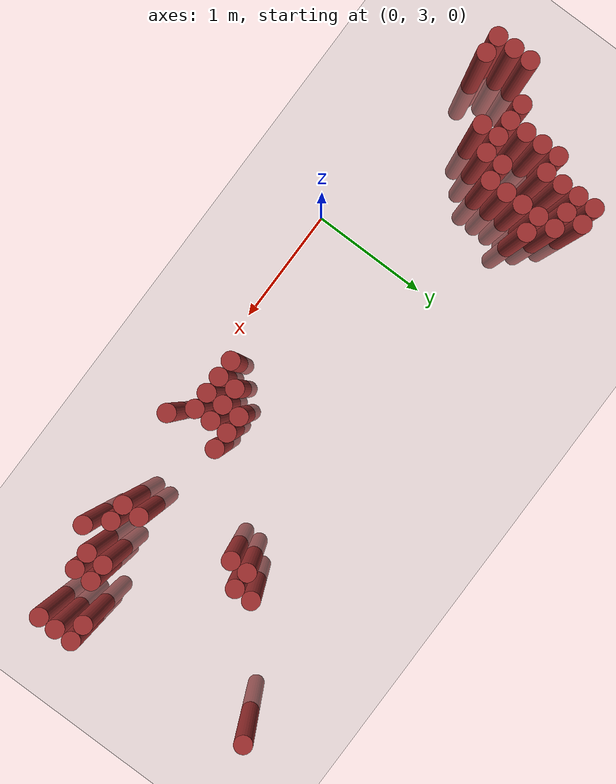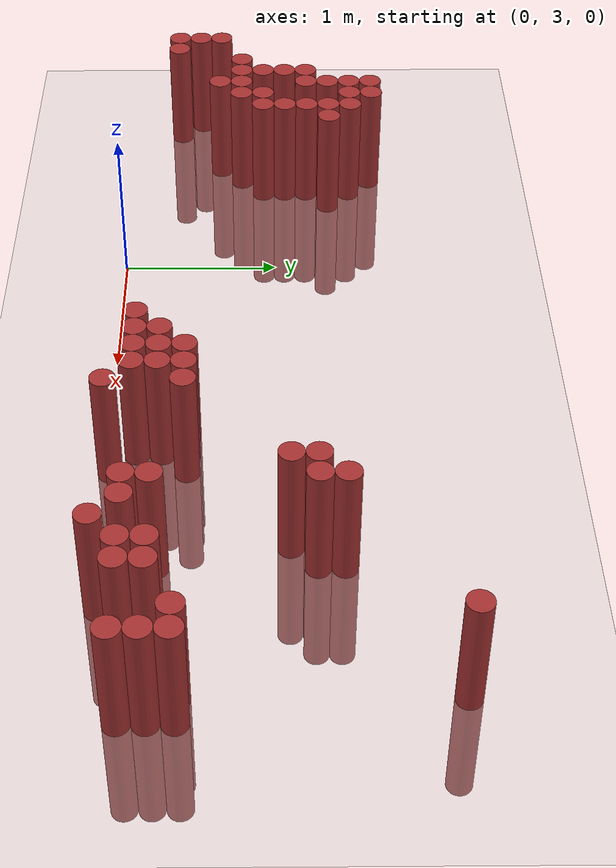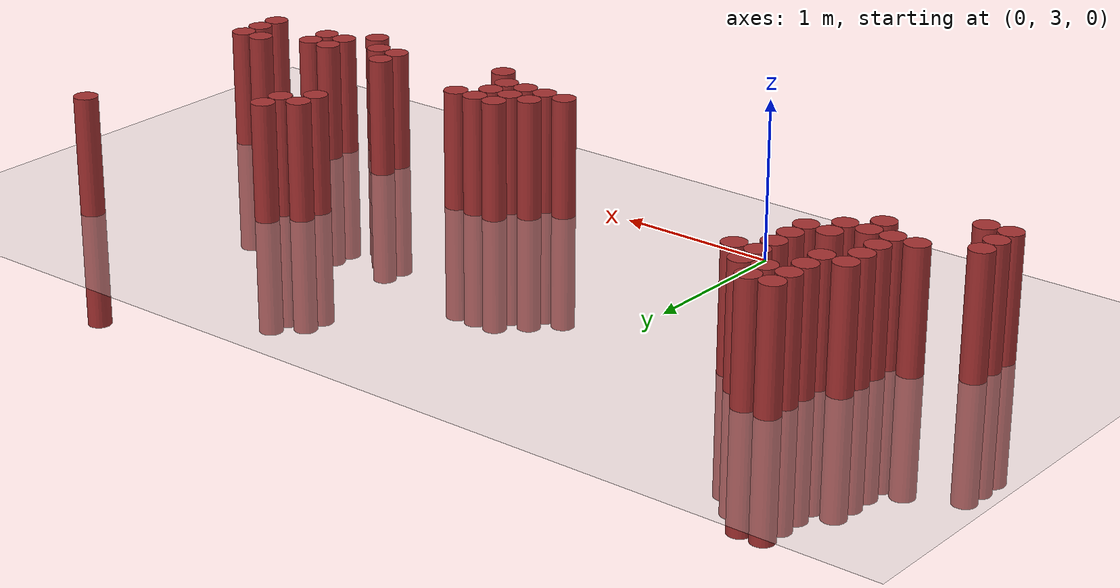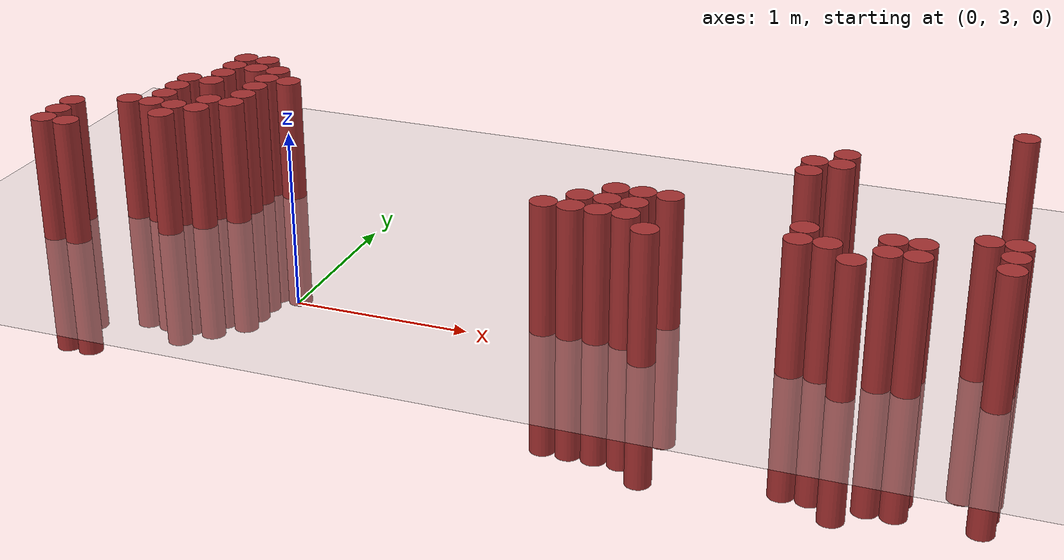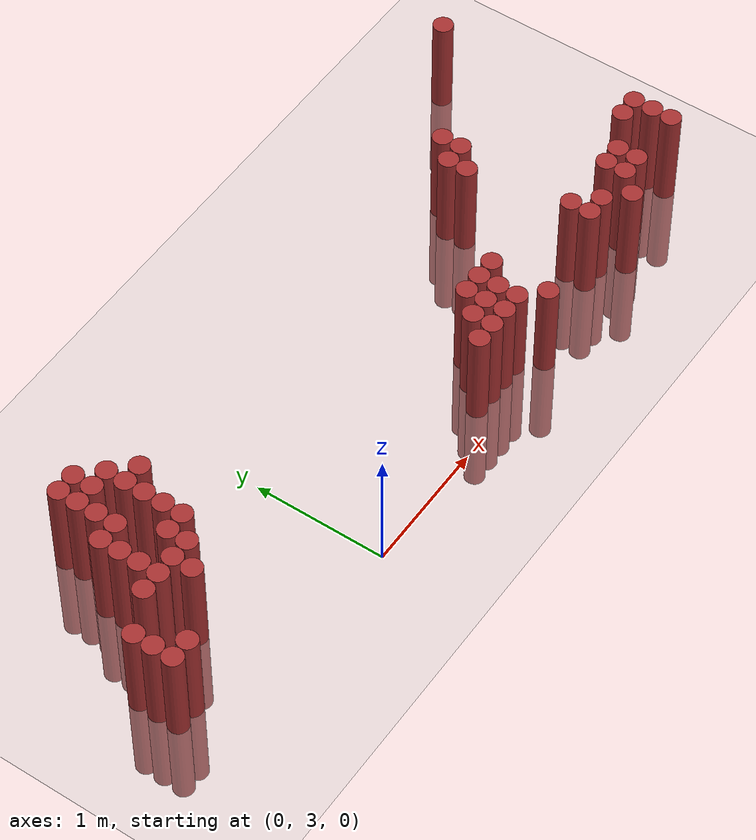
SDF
<sdf version="1.6">
 <world name="default">
  <model name="ground_plane">
   <static>1</static>
   <link name="link">
    <collision name="collision">
     <geometry><plane><normal>0 0 1</normal><size>100 100</size></plane></geometry>
     <surface><friction><ode><mu>100</mu><mu2>50</mu2></ode></friction></surface>
    </collision>
    <visual name="visual">
     <cast_shadows>0</cast_shadows>
     <geometry><plane><normal>0 0 1</normal><size>100 100</size></plane></geometry>
     <material>
      <script><uri>file://media/materials/scripts/gazebo.material</uri><name>Gazebo/Grey</name></script>
     </material>
    </visual>
   </link>
  </model>
  <model name="unit_cylinder_304">
   <static>1</static>
   <pose>-1.775000 3.325000 0.000000 0.000000 0.000000 0.000000</pose>
   <link name="link">
    <inertial>
     <mass>1</mass>
     <inertia><ixx>0.145833</ixx><ixy>0</ixy><ixz>0</ixz><iyy>0.145833</iyy><iyz>0</iyz><izz>0.125</izz></inertia>
    </inertial>
    <collision name="collision">
     <geometry><cylinder><radius>0.075000</radius><length>1.5</length></cylinder></geometry>
    </collision>
    <visual name="visual">
     <geometry><cylinder><radius>0.075000</radius><length>1.5</length></cylinder></geometry>
     <material>
      <ambient>0.648000 0.192000 0.192000 1</ambient>
      <diffuse>0.648000 0.192000 0.192000 1</diffuse>
     </material>
     <material>
      <script><name>Gazebo/Grey</name><uri>file://media/materials/scripts/gazebo.material</uri></script>
     </material>
    </visual>
   </link>
  </model>
  <model name="unit_cylinder_305">
   <static>1</static>
   <pose>-1.775000 3.475000 0.000000 0.000000 0.000000 0.000000</pose>
   <link name="link">
    <inertial>
     <mass>1</mass>
     <inertia><ixx>0.145833</ixx><ixy>0</ixy><ixz>0</ixz><iyy>0.145833</iyy><iyz>0</iyz><izz>0.125</izz></inertia>
    </inertial>
    <collision name="collision">
     <geometry><cylinder><radius>0.075000</radius><length>1.5</length></cylinder></geometry>
    </collision>
    <visual name="visual">
     <geometry><cylinder><radius>0.075000</radius><length>1.5</length></cylinder></geometry>
     <material>
      <ambient>0.648000 0.192000 0.192000 1</ambient>
      <diffuse>0.648000 0.192000 0.192000 1</diffuse>
     </material>
     <material>
      <script><name>Gazebo/Grey</name><uri>file://media/materials/scripts/gazebo.material</uri></script>
     </material>
    </visual>
   </link>
  </model>
  <model name="unit_cylinder_306">
   <static>1</static>
   <pose>-1.775000 3.625000 0.000000 0.000000 0.000000 0.000000</pose>
   <link name="link">
    <inertial>
     <mass>1</mass>
     <inertia><ixx>0.145833</ixx><ixy>0</ixy><ixz>0</ixz><iyy>0.145833</iyy><iyz>0</iyz><izz>0.125</izz></inertia>
    </inertial>
    <collision name="collision">
     <geometry><cylinder><radius>0.075000</radius><length>1.5</length></cylinder></geometry>
    </collision>
    <visual name="visual">
     <geometry><cylinder><radius>0.075000</radius><length>1.5</length></cylinder></geometry>
     <material>
      <ambient>0.648000 0.192000 0.192000 1</ambient>
      <diffuse>0.648000 0.192000 0.192000 1</diffuse>
     </material>
     <material>
      <script><name>Gazebo/Grey</name><uri>file://media/materials/scripts/gazebo.material</uri></script>
     </material>
    </visual>
   </link>
  </model>
  <model name="unit_cylinder_310">
   <static>1</static>
   <pose>-1.625000 3.325000 0.000000 0.000000 0.000000 0.000000</pose>
   <link name="link">
    <inertial>
     <mass>1</mass>
     <inertia><ixx>0.145833</ixx><ixy>0</ixy><ixz>0</ixz><iyy>0.145833</iyy><iyz>0</iyz><izz>0.125</izz></inertia>
    </inertial>
    <collision name="collision">
     <geometry><cylinder><radius>0.075000</radius><length>1.5</length></cylinder></geometry>
    </collision>
    <visual name="visual">
     <geometry><cylinder><radius>0.075000</radius><length>1.5</length></cylinder></geometry>
     <material>
      <ambient>0.648000 0.192000 0.192000 1</ambient>
      <diffuse>0.648000 0.192000 0.192000 1</diffuse>
     </material>
     <material>
      <script><name>Gazebo/Grey</name><uri>file://media/materials/scripts/gazebo.material</uri></script>
     </material>
    </visual>
   </link>
  </model>
  <model name="unit_cylinder_316">
   <static>1</static>
   <pose>-1.475000 3.775000 0.000000 0.000000 0.000000 0.000000</pose>
   <link name="link">
    <inertial>
     <mass>1</mass>
     <inertia><ixx>0.145833</ixx><ixy>0</ixy><ixz>0</ixz><iyy>0.145833</iyy><iyz>0</iyz><izz>0.125</izz></inertia>
    </inertial>
    <collision name="collision">
     <geometry><cylinder><radius>0.075000</radius><length>1.5</length></cylinder></geometry>
    </collision>
    <visual name="visual">
     <geometry><cylinder><radius>0.075000</radius><length>1.5</length></cylinder></geometry>
     <material>
      <ambient>0.648000 0.192000 0.192000 1</ambient>
      <diffuse>0.648000 0.192000 0.192000 1</diffuse>
     </material>
     <material>
      <script><name>Gazebo/Grey</name><uri>file://media/materials/scripts/gazebo.material</uri></script>
     </material>
    </visual>
   </link>
  </model>
  <model name="unit_cylinder_321">
   <static>1</static>
   <pose>-1.325000 3.775000 0.000000 0.000000 0.000000 0.000000</pose>
   <link name="link">
    <inertial>
     <mass>1</mass>
     <inertia><ixx>0.145833</ixx><ixy>0</ixy><ixz>0</ixz><iyy>0.145833</iyy><iyz>0</iyz><izz>0.125</izz></inertia>
    </inertial>
    <collision name="collision">
     <geometry><cylinder><radius>0.075000</radius><length>1.5</length></cylinder></geometry>
    </collision>
    <visual name="visual">
     <geometry><cylinder><radius>0.075000</radius><length>1.5</length></cylinder></geometry>
     <material>
      <ambient>0.648000 0.192000 0.192000 1</ambient>
      <diffuse>0.648000 0.192000 0.192000 1</diffuse>
     </material>
     <material>
      <script><name>Gazebo/Grey</name><uri>file://media/materials/scripts/gazebo.material</uri></script>
     </material>
    </visual>
   </link>
  </model>
  <model name="unit_cylinder_322">
   <static>1</static>
   <pose>-1.325000 3.925000 0.000000 0.000000 0.000000 0.000000</pose>
   <link name="link">
    <inertial>
     <mass>1</mass>
     <inertia><ixx>0.145833</ixx><ixy>0</ixy><ixz>0</ixz><iyy>0.145833</iyy><iyz>0</iyz><izz>0.125</izz></inertia>
    </inertial>
    <collision name="collision">
     <geometry><cylinder><radius>0.075000</radius><length>1.5</length></cylinder></geometry>
    </collision>
    <visual name="visual">
     <geometry><cylinder><radius>0.075000</radius><length>1.5</length></cylinder></geometry>
     <material>
      <ambient>0.648000 0.192000 0.192000 1</ambient>
      <diffuse>0.648000 0.192000 0.192000 1</diffuse>
     </material>
     <material>
      <script><name>Gazebo/Grey</name><uri>file://media/materials/scripts/gazebo.material</uri></script>
     </material>
    </visual>
   </link>
  </model>
  <model name="unit_cylinder_323">
   <static>1</static>
   <pose>-1.325000 4.075000 0.000000 0.000000 0.000000 0.000000</pose>
   <link name="link">
    <inertial>
     <mass>1</mass>
     <inertia><ixx>0.145833</ixx><ixy>0</ixy><ixz>0</ixz><iyy>0.145833</iyy><iyz>0</iyz><izz>0.125</izz></inertia>
    </inertial>
    <collision name="collision">
     <geometry><cylinder><radius>0.075000</radius><length>1.5</length></cylinder></geometry>
    </collision>
    <visual name="visual">
     <geometry><cylinder><radius>0.075000</radius><length>1.5</length></cylinder></geometry>
     <material>
      <ambient>0.648000 0.192000 0.192000 1</ambient>
      <diffuse>0.648000 0.192000 0.192000 1</diffuse>
     </material>
     <material>
      <script><name>Gazebo/Grey</name><uri>file://media/materials/scripts/gazebo.material</uri></script>
     </material>
    </visual>
   </link>
  </model>
  <model name="unit_cylinder_324">
   <static>1</static>
   <pose>-1.325000 4.225000 0.000000 0.000000 0.000000 0.000000</pose>
   <link name="link">
    <inertial>
     <mass>1</mass>
     <inertia><ixx>0.145833</ixx><ixy>0</ixy><ixz>0</ixz><iyy>0.145833</iyy><iyz>0</iyz><izz>0.125</izz></inertia>
    </inertial>
    <collision name="collision">
     <geometry><cylinder><radius>0.075000</radius><length>1.5</length></cylinder></geometry>
    </collision>
    <visual name="visual">
     <geometry><cylinder><radius>0.075000</radius><length>1.5</length></cylinder></geometry>
     <material>
      <ambient>0.648000 0.192000 0.192000 1</ambient>
      <diffuse>0.648000 0.192000 0.192000 1</diffuse>
     </material>
     <material>
      <script><name>Gazebo/Grey</name><uri>file://media/materials/scripts/gazebo.material</uri></script>
     </material>
    </visual>
   </link>
  </model>
  <model name="unit_cylinder_325">
   <static>1</static>
   <pose>-1.175000 3.625000 0.000000 0.000000 0.000000 0.000000</pose>
   <link name="link">
    <inertial>
     <mass>1</mass>
     <inertia><ixx>0.145833</ixx><ixy>0</ixy><ixz>0</ixz><iyy>0.145833</iyy><iyz>0</iyz><izz>0.125</izz></inertia>
    </inertial>
    <collision name="collision">
     <geometry><cylinder><radius>0.075000</radius><length>1.5</length></cylinder></geometry>
    </collision>
    <visual name="visual">
     <geometry><cylinder><radius>0.075000</radius><length>1.5</length></cylinder></geometry>
     <material>
      <ambient>0.648000 0.192000 0.192000 1</ambient>
      <diffuse>0.648000 0.192000 0.192000 1</diffuse>
     </material>
     <material>
      <script><name>Gazebo/Grey</name><uri>file://media/materials/scripts/gazebo.material</uri></script>
     </material>
    </visual>
   </link>
  </model>
  <model name="unit_cylinder_326">
   <static>1</static>
   <pose>-1.175000 3.775000 0.000000 0.000000 0.000000 0.000000</pose>
   <link name="link">
    <inertial>
     <mass>1</mass>
     <inertia><ixx>0.145833</ixx><ixy>0</ixy><ixz>0</ixz><iyy>0.145833</iyy><iyz>0</iyz><izz>0.125</izz></inertia>
    </inertial>
    <collision name="collision">
     <geometry><cylinder><radius>0.075000</radius><length>1.5</length></cylinder></geometry>
    </collision>
    <visual name="visual">
     <geometry><cylinder><radius>0.075000</radius><length>1.5</length></cylinder></geometry>
     <material>
      <ambient>0.648000 0.192000 0.192000 1</ambient>
      <diffuse>0.648000 0.192000 0.192000 1</diffuse>
     </material>
     <material>
      <script><name>Gazebo/Grey</name><uri>file://media/materials/scripts/gazebo.material</uri></script>
     </material>
    </visual>
   </link>
  </model>
  <model name="unit_cylinder_327">
   <static>1</static>
   <pose>-1.175000 4.225000 0.000000 0.000000 0.000000 0.000000</pose>
   <link name="link">
    <inertial>
     <mass>1</mass>
     <inertia><ixx>0.145833</ixx><ixy>0</ixy><ixz>0</ixz><iyy>0.145833</iyy><iyz>0</iyz><izz>0.125</izz></inertia>
    </inertial>
    <collision name="collision">
     <geometry><cylinder><radius>0.075000</radius><length>1.5</length></cylinder></geometry>
    </collision>
    <visual name="visual">
     <geometry><cylinder><radius>0.075000</radius><length>1.5</length></cylinder></geometry>
     <material>
      <ambient>0.648000 0.192000 0.192000 1</ambient>
      <diffuse>0.648000 0.192000 0.192000 1</diffuse>
     </material>
     <material>
      <script><name>Gazebo/Grey</name><uri>file://media/materials/scripts/gazebo.material</uri></script>
     </material>
    </visual>
   </link>
  </model>
  <model name="unit_cylinder_328">
   <static>1</static>
   <pose>-1.175000 4.375000 0.000000 0.000000 0.000000 0.000000</pose>
   <link name="link">
    <inertial>
     <mass>1</mass>
     <inertia><ixx>0.145833</ixx><ixy>0</ixy><ixz>0</ixz><iyy>0.145833</iyy><iyz>0</iyz><izz>0.125</izz></inertia>
    </inertial>
    <collision name="collision">
     <geometry><cylinder><radius>0.075000</radius><length>1.5</length></cylinder></geometry>
    </collision>
    <visual name="visual">
     <geometry><cylinder><radius>0.075000</radius><length>1.5</length></cylinder></geometry>
     <material>
      <ambient>0.648000 0.192000 0.192000 1</ambient>
      <diffuse>0.648000 0.192000 0.192000 1</diffuse>
     </material>
     <material>
      <script><name>Gazebo/Grey</name><uri>file://media/materials/scripts/gazebo.material</uri></script>
     </material>
    </visual>
   </link>
  </model>
  <model name="unit_cylinder_329">
   <static>1</static>
   <pose>-1.175000 4.525000 0.000000 0.000000 0.000000 0.000000</pose>
   <link name="link">
    <inertial>
     <mass>1</mass>
     <inertia><ixx>0.145833</ixx><ixy>0</ixy><ixz>0</ixz><iyy>0.145833</iyy><iyz>0</iyz><izz>0.125</izz></inertia>
    </inertial>
    <collision name="collision">
     <geometry><cylinder><radius>0.075000</radius><length>1.5</length></cylinder></geometry>
    </collision>
    <visual name="visual">
     <geometry><cylinder><radius>0.075000</radius><length>1.5</length></cylinder></geometry>
     <material>
      <ambient>0.648000 0.192000 0.192000 1</ambient>
      <diffuse>0.648000 0.192000 0.192000 1</diffuse>
     </material>
     <material>
      <script><name>Gazebo/Grey</name><uri>file://media/materials/scripts/gazebo.material</uri></script>
     </material>
    </visual>
   </link>
  </model>
  <model name="unit_cylinder_330">
   <static>1</static>
   <pose>-1.175000 4.675000 0.000000 0.000000 0.000000 0.000000</pose>
   <link name="link">
    <inertial>
     <mass>1</mass>
     <inertia><ixx>0.145833</ixx><ixy>0</ixy><ixz>0</ixz><iyy>0.145833</iyy><iyz>0</iyz><izz>0.125</izz></inertia>
    </inertial>
    <collision name="collision">
     <geometry><cylinder><radius>0.075000</radius><length>1.5</length></cylinder></geometry>
    </collision>
    <visual name="visual">
     <geometry><cylinder><radius>0.075000</radius><length>1.5</length></cylinder></geometry>
     <material>
      <ambient>0.648000 0.192000 0.192000 1</ambient>
      <diffuse>0.648000 0.192000 0.192000 1</diffuse>
     </material>
     <material>
      <script><name>Gazebo/Grey</name><uri>file://media/materials/scripts/gazebo.material</uri></script>
     </material>
    </visual>
   </link>
  </model>
  <model name="unit_cylinder_331">
   <static>1</static>
   <pose>-1.025000 3.775000 0.000000 0.000000 0.000000 0.000000</pose>
   <link name="link">
    <inertial>
     <mass>1</mass>
     <inertia><ixx>0.145833</ixx><ixy>0</ixy><ixz>0</ixz><iyy>0.145833</iyy><iyz>0</iyz><izz>0.125</izz></inertia>
    </inertial>
    <collision name="collision">
     <geometry><cylinder><radius>0.075000</radius><length>1.5</length></cylinder></geometry>
    </collision>
    <visual name="visual">
     <geometry><cylinder><radius>0.075000</radius><length>1.5</length></cylinder></geometry>
     <material>
      <ambient>0.648000 0.192000 0.192000 1</ambient>
      <diffuse>0.648000 0.192000 0.192000 1</diffuse>
     </material>
     <material>
      <script><name>Gazebo/Grey</name><uri>file://media/materials/scripts/gazebo.material</uri></script>
     </material>
    </visual>
   </link>
  </model>
  <model name="unit_cylinder_332">
   <static>1</static>
   <pose>-1.025000 3.925000 0.000000 0.000000 0.000000 0.000000</pose>
   <link name="link">
    <inertial>
     <mass>1</mass>
     <inertia><ixx>0.145833</ixx><ixy>0</ixy><ixz>0</ixz><iyy>0.145833</iyy><iyz>0</iyz><izz>0.125</izz></inertia>
    </inertial>
    <collision name="collision">
     <geometry><cylinder><radius>0.075000</radius><length>1.5</length></cylinder></geometry>
    </collision>
    <visual name="visual">
     <geometry><cylinder><radius>0.075000</radius><length>1.5</length></cylinder></geometry>
     <material>
      <ambient>0.648000 0.192000 0.192000 1</ambient>
      <diffuse>0.648000 0.192000 0.192000 1</diffuse>
     </material>
     <material>
      <script><name>Gazebo/Grey</name><uri>file://media/materials/scripts/gazebo.material</uri></script>
     </material>
    </visual>
   </link>
  </model>
  <model name="unit_cylinder_333">
   <static>1</static>
   <pose>-1.025000 4.525000 0.000000 0.000000 0.000000 0.000000</pose>
   <link name="link">
    <inertial>
     <mass>1</mass>
     <inertia><ixx>0.145833</ixx><ixy>0</ixy><ixz>0</ixz><iyy>0.145833</iyy><iyz>0</iyz><izz>0.125</izz></inertia>
    </inertial>
    <collision name="collision">
     <geometry><cylinder><radius>0.075000</radius><length>1.5</length></cylinder></geometry>
    </collision>
    <visual name="visual">
     <geometry><cylinder><radius>0.075000</radius><length>1.5</length></cylinder></geometry>
     <material>
      <ambient>0.648000 0.192000 0.192000 1</ambient>
      <diffuse>0.648000 0.192000 0.192000 1</diffuse>
     </material>
     <material>
      <script><name>Gazebo/Grey</name><uri>file://media/materials/scripts/gazebo.material</uri></script>
     </material>
    </visual>
   </link>
  </model>
  <model name="unit_cylinder_334">
   <static>1</static>
   <pose>-1.025000 4.675000 0.000000 0.000000 0.000000 0.000000</pose>
   <link name="link">
    <inertial>
     <mass>1</mass>
     <inertia><ixx>0.145833</ixx><ixy>0</ixy><ixz>0</ixz><iyy>0.145833</iyy><iyz>0</iyz><izz>0.125</izz></inertia>
    </inertial>
    <collision name="collision">
     <geometry><cylinder><radius>0.075000</radius><length>1.5</length></cylinder></geometry>
    </collision>
    <visual name="visual">
     <geometry><cylinder><radius>0.075000</radius><length>1.5</length></cylinder></geometry>
     <material>
      <ambient>0.648000 0.192000 0.192000 1</ambient>
      <diffuse>0.648000 0.192000 0.192000 1</diffuse>
     </material>
     <material>
      <script><name>Gazebo/Grey</name><uri>file://media/materials/scripts/gazebo.material</uri></script>
     </material>
    </visual>
   </link>
  </model>
  <model name="unit_cylinder_335">
   <static>1</static>
   <pose>-0.875000 3.925000 0.000000 0.000000 0.000000 0.000000</pose>
   <link name="link">
    <inertial>
     <mass>1</mass>
     <inertia><ixx>0.145833</ixx><ixy>0</ixy><ixz>0</ixz><iyy>0.145833</iyy><iyz>0</iyz><izz>0.125</izz></inertia>
    </inertial>
    <collision name="collision">
     <geometry><cylinder><radius>0.075000</radius><length>1.5</length></cylinder></geometry>
    </collision>
    <visual name="visual">
     <geometry><cylinder><radius>0.075000</radius><length>1.5</length></cylinder></geometry>
     <material>
      <ambient>0.648000 0.192000 0.192000 1</ambient>
      <diffuse>0.648000 0.192000 0.192000 1</diffuse>
     </material>
     <material>
      <script><name>Gazebo/Grey</name><uri>file://media/materials/scripts/gazebo.material</uri></script>
     </material>
    </visual>
   </link>
  </model>
  <model name="unit_cylinder_336">
   <static>1</static>
   <pose>-0.875000 4.075000 0.000000 0.000000 0.000000 0.000000</pose>
   <link name="link">
    <inertial>
     <mass>1</mass>
     <inertia><ixx>0.145833</ixx><ixy>0</ixy><ixz>0</ixz><iyy>0.145833</iyy><iyz>0</iyz><izz>0.125</izz></inertia>
    </inertial>
    <collision name="collision">
     <geometry><cylinder><radius>0.075000</radius><length>1.5</length></cylinder></geometry>
    </collision>
    <visual name="visual">
     <geometry><cylinder><radius>0.075000</radius><length>1.5</length></cylinder></geometry>
     <material>
      <ambient>0.648000 0.192000 0.192000 1</ambient>
      <diffuse>0.648000 0.192000 0.192000 1</diffuse>
     </material>
     <material>
      <script><name>Gazebo/Grey</name><uri>file://media/materials/scripts/gazebo.material</uri></script>
     </material>
    </visual>
   </link>
  </model>
  <model name="unit_cylinder_337">
   <static>1</static>
   <pose>-0.875000 4.225000 0.000000 0.000000 0.000000 0.000000</pose>
   <link name="link">
    <inertial>
     <mass>1</mass>
     <inertia><ixx>0.145833</ixx><ixy>0</ixy><ixz>0</ixz><iyy>0.145833</iyy><iyz>0</iyz><izz>0.125</izz></inertia>
    </inertial>
    <collision name="collision">
     <geometry><cylinder><radius>0.075000</radius><length>1.5</length></cylinder></geometry>
    </collision>
    <visual name="visual">
     <geometry><cylinder><radius>0.075000</radius><length>1.5</length></cylinder></geometry>
     <material>
      <ambient>0.648000 0.192000 0.192000 1</ambient>
      <diffuse>0.648000 0.192000 0.192000 1</diffuse>
     </material>
     <material>
      <script><name>Gazebo/Grey</name><uri>file://media/materials/scripts/gazebo.material</uri></script>
     </material>
    </visual>
   </link>
  </model>
  <model name="unit_cylinder_338">
   <static>1</static>
   <pose>-0.875000 4.375000 0.000000 0.000000 0.000000 0.000000</pose>
   <link name="link">
    <inertial>
     <mass>1</mass>
     <inertia><ixx>0.145833</ixx><ixy>0</ixy><ixz>0</ixz><iyy>0.145833</iyy><iyz>0</iyz><izz>0.125</izz></inertia>
    </inertial>
    <collision name="collision">
     <geometry><cylinder><radius>0.075000</radius><length>1.5</length></cylinder></geometry>
    </collision>
    <visual name="visual">
     <geometry><cylinder><radius>0.075000</radius><length>1.5</length></cylinder></geometry>
     <material>
      <ambient>0.648000 0.192000 0.192000 1</ambient>
      <diffuse>0.648000 0.192000 0.192000 1</diffuse>
     </material>
     <material>
      <script><name>Gazebo/Grey</name><uri>file://media/materials/scripts/gazebo.material</uri></script>
     </material>
    </visual>
   </link>
  </model>
  <model name="unit_cylinder_339">
   <static>1</static>
   <pose>-0.875000 4.525000 0.000000 0.000000 0.000000 0.000000</pose>
   <link name="link">
    <inertial>
     <mass>1</mass>
     <inertia><ixx>0.145833</ixx><ixy>0</ixy><ixz>0</ixz><iyy>0.145833</iyy><iyz>0</iyz><izz>0.125</izz></inertia>
    </inertial>
    <collision name="collision">
     <geometry><cylinder><radius>0.075000</radius><length>1.5</length></cylinder></geometry>
    </collision>
    <visual name="visual">
     <geometry><cylinder><radius>0.075000</radius><length>1.5</length></cylinder></geometry>
     <material>
      <ambient>0.648000 0.192000 0.192000 1</ambient>
      <diffuse>0.648000 0.192000 0.192000 1</diffuse>
     </material>
     <material>
      <script><name>Gazebo/Grey</name><uri>file://media/materials/scripts/gazebo.material</uri></script>
     </material>
    </visual>
   </link>
  </model>
  <model name="unit_cylinder_340">
   <static>1</static>
   <pose>-0.725000 4.375000 0.000000 0.000000 0.000000 0.000000</pose>
   <link name="link">
    <inertial>
     <mass>1</mass>
     <inertia><ixx>0.145833</ixx><ixy>0</ixy><ixz>0</ixz><iyy>0.145833</iyy><iyz>0</iyz><izz>0.125</izz></inertia>
    </inertial>
    <collision name="collision">
     <geometry><cylinder><radius>0.075000</radius><length>1.5</length></cylinder></geometry>
    </collision>
    <visual name="visual">
     <geometry><cylinder><radius>0.075000</radius><length>1.5</length></cylinder></geometry>
     <material>
      <ambient>0.648000 0.192000 0.192000 1</ambient>
      <diffuse>0.648000 0.192000 0.192000 1</diffuse>
     </material>
     <material>
      <script><name>Gazebo/Grey</name><uri>file://media/materials/scripts/gazebo.material</uri></script>
     </material>
    </visual>
   </link>
  </model>
  <model name="unit_cylinder_360">
   <static>1</static>
   <pose>1.375000 3.175000 0.000000 0.000000 0.000000 0.000000</pose>
   <link name="link">
    <inertial>
     <mass>1</mass>
     <inertia><ixx>0.145833</ixx><ixy>0</ixy><ixz>0</ixz><iyy>0.145833</iyy><iyz>0</iyz><izz>0.125</izz></inertia>
    </inertial>
    <collision name="collision">
     <geometry><cylinder><radius>0.075000</radius><length>1.5</length></cylinder></geometry>
    </collision>
    <visual name="visual">
     <geometry><cylinder><radius>0.075000</radius><length>1.5</length></cylinder></geometry>
     <material>
      <ambient>0.648000 0.192000 0.192000 1</ambient>
      <diffuse>0.648000 0.192000 0.192000 1</diffuse>
     </material>
     <material>
      <script><name>Gazebo/Grey</name><uri>file://media/materials/scripts/gazebo.material</uri></script>
     </material>
    </visual>
   </link>
  </model>
  <model name="unit_cylinder_363">
   <static>1</static>
   <pose>1.525000 3.175000 0.000000 0.000000 0.000000 0.000000</pose>
   <link name="link">
    <inertial>
     <mass>1</mass>
     <inertia><ixx>0.145833</ixx><ixy>0</ixy><ixz>0</ixz><iyy>0.145833</iyy><iyz>0</iyz><izz>0.125</izz></inertia>
    </inertial>
    <collision name="collision">
     <geometry><cylinder><radius>0.075000</radius><length>1.5</length></cylinder></geometry>
    </collision>
    <visual name="visual">
     <geometry><cylinder><radius>0.075000</radius><length>1.5</length></cylinder></geometry>
     <material>
      <ambient>0.648000 0.192000 0.192000 1</ambient>
      <diffuse>0.648000 0.192000 0.192000 1</diffuse>
     </material>
     <material>
      <script><name>Gazebo/Grey</name><uri>file://media/materials/scripts/gazebo.material</uri></script>
     </material>
    </visual>
   </link>
  </model>
  <model name="unit_cylinder_364">
   <static>1</static>
   <pose>1.525000 3.325000 0.000000 0.000000 0.000000 0.000000</pose>
   <link name="link">
    <inertial>
     <mass>1</mass>
     <inertia><ixx>0.145833</ixx><ixy>0</ixy><ixz>0</ixz><iyy>0.145833</iyy><iyz>0</iyz><izz>0.125</izz></inertia>
    </inertial>
    <collision name="collision">
     <geometry><cylinder><radius>0.075000</radius><length>1.5</length></cylinder></geometry>
    </collision>
    <visual name="visual">
     <geometry><cylinder><radius>0.075000</radius><length>1.5</length></cylinder></geometry>
     <material>
      <ambient>0.648000 0.192000 0.192000 1</ambient>
      <diffuse>0.648000 0.192000 0.192000 1</diffuse>
     </material>
     <material>
      <script><name>Gazebo/Grey</name><uri>file://media/materials/scripts/gazebo.material</uri></script>
     </material>
    </visual>
   </link>
  </model>
  <model name="unit_cylinder_368">
   <static>1</static>
   <pose>1.675000 3.175000 0.000000 0.000000 0.000000 0.000000</pose>
   <link name="link">
    <inertial>
     <mass>1</mass>
     <inertia><ixx>0.145833</ixx><ixy>0</ixy><ixz>0</ixz><iyy>0.145833</iyy><iyz>0</iyz><izz>0.125</izz></inertia>
    </inertial>
    <collision name="collision">
     <geometry><cylinder><radius>0.075000</radius><length>1.5</length></cylinder></geometry>
    </collision>
    <visual name="visual">
     <geometry><cylinder><radius>0.075000</radius><length>1.5</length></cylinder></geometry>
     <material>
      <ambient>0.648000 0.192000 0.192000 1</ambient>
      <diffuse>0.648000 0.192000 0.192000 1</diffuse>
     </material>
     <material>
      <script><name>Gazebo/Grey</name><uri>file://media/materials/scripts/gazebo.material</uri></script>
     </material>
    </visual>
   </link>
  </model>
  <model name="unit_cylinder_369">
   <static>1</static>
   <pose>1.675000 3.325000 0.000000 0.000000 0.000000 0.000000</pose>
   <link name="link">
    <inertial>
     <mass>1</mass>
     <inertia><ixx>0.145833</ixx><ixy>0</ixy><ixz>0</ixz><iyy>0.145833</iyy><iyz>0</iyz><izz>0.125</izz></inertia>
    </inertial>
    <collision name="collision">
     <geometry><cylinder><radius>0.075000</radius><length>1.5</length></cylinder></geometry>
    </collision>
    <visual name="visual">
     <geometry><cylinder><radius>0.075000</radius><length>1.5</length></cylinder></geometry>
     <material>
      <ambient>0.648000 0.192000 0.192000 1</ambient>
      <diffuse>0.648000 0.192000 0.192000 1</diffuse>
     </material>
     <material>
      <script><name>Gazebo/Grey</name><uri>file://media/materials/scripts/gazebo.material</uri></script>
     </material>
    </visual>
   </link>
  </model>
  <model name="unit_cylinder_370">
   <static>1</static>
   <pose>1.675000 3.475000 0.000000 0.000000 0.000000 0.000000</pose>
   <link name="link">
    <inertial>
     <mass>1</mass>
     <inertia><ixx>0.145833</ixx><ixy>0</ixy><ixz>0</ixz><iyy>0.145833</iyy><iyz>0</iyz><izz>0.125</izz></inertia>
    </inertial>
    <collision name="collision">
     <geometry><cylinder><radius>0.075000</radius><length>1.5</length></cylinder></geometry>
    </collision>
    <visual name="visual">
     <geometry><cylinder><radius>0.075000</radius><length>1.5</length></cylinder></geometry>
     <material>
      <ambient>0.648000 0.192000 0.192000 1</ambient>
      <diffuse>0.648000 0.192000 0.192000 1</diffuse>
     </material>
     <material>
      <script><name>Gazebo/Grey</name><uri>file://media/materials/scripts/gazebo.material</uri></script>
     </material>
    </visual>
   </link>
  </model>
  <model name="unit_cylinder_371">
   <static>1</static>
   <pose>1.825000 3.175000 0.000000 0.000000 0.000000 0.000000</pose>
   <link name="link">
    <inertial>
     <mass>1</mass>
     <inertia><ixx>0.145833</ixx><ixy>0</ixy><ixz>0</ixz><iyy>0.145833</iyy><iyz>0</iyz><izz>0.125</izz></inertia>
    </inertial>
    <collision name="collision">
     <geometry><cylinder><radius>0.075000</radius><length>1.5</length></cylinder></geometry>
    </collision>
    <visual name="visual">
     <geometry><cylinder><radius>0.075000</radius><length>1.5</length></cylinder></geometry>
     <material>
      <ambient>0.648000 0.192000 0.192000 1</ambient>
      <diffuse>0.648000 0.192000 0.192000 1</diffuse>
     </material>
     <material>
      <script><name>Gazebo/Grey</name><uri>file://media/materials/scripts/gazebo.material</uri></script>
     </material>
    </visual>
   </link>
  </model>
  <model name="unit_cylinder_372">
   <static>1</static>
   <pose>1.825000 3.325000 0.000000 0.000000 0.000000 0.000000</pose>
   <link name="link">
    <inertial>
     <mass>1</mass>
     <inertia><ixx>0.145833</ixx><ixy>0</ixy><ixz>0</ixz><iyy>0.145833</iyy><iyz>0</iyz><izz>0.125</izz></inertia>
    </inertial>
    <collision name="collision">
     <geometry><cylinder><radius>0.075000</radius><length>1.5</length></cylinder></geometry>
    </collision>
    <visual name="visual">
     <geometry><cylinder><radius>0.075000</radius><length>1.5</length></cylinder></geometry>
     <material>
      <ambient>0.648000 0.192000 0.192000 1</ambient>
      <diffuse>0.648000 0.192000 0.192000 1</diffuse>
     </material>
     <material>
      <script><name>Gazebo/Grey</name><uri>file://media/materials/scripts/gazebo.material</uri></script>
     </material>
    </visual>
   </link>
  </model>
  <model name="unit_cylinder_373">
   <static>1</static>
   <pose>1.825000 3.475000 0.000000 0.000000 0.000000 0.000000</pose>
   <link name="link">
    <inertial>
     <mass>1</mass>
     <inertia><ixx>0.145833</ixx><ixy>0</ixy><ixz>0</ixz><iyy>0.145833</iyy><iyz>0</iyz><izz>0.125</izz></inertia>
    </inertial>
    <collision name="collision">
     <geometry><cylinder><radius>0.075000</radius><length>1.5</length></cylinder></geometry>
    </collision>
    <visual name="visual">
     <geometry><cylinder><radius>0.075000</radius><length>1.5</length></cylinder></geometry>
     <material>
      <ambient>0.648000 0.192000 0.192000 1</ambient>
      <diffuse>0.648000 0.192000 0.192000 1</diffuse>
     </material>
     <material>
      <script><name>Gazebo/Grey</name><uri>file://media/materials/scripts/gazebo.material</uri></script>
     </material>
    </visual>
   </link>
  </model>
  <model name="unit_cylinder_374">
   <static>1</static>
   <pose>1.975000 3.025000 0.000000 0.000000 0.000000 0.000000</pose>
   <link name="link">
    <inertial>
     <mass>1</mass>
     <inertia><ixx>0.145833</ixx><ixy>0</ixy><ixz>0</ixz><iyy>0.145833</iyy><iyz>0</iyz><izz>0.125</izz></inertia>
    </inertial>
    <collision name="collision">
     <geometry><cylinder><radius>0.075000</radius><length>1.5</length></cylinder></geometry>
    </collision>
    <visual name="visual">
     <geometry><cylinder><radius>0.075000</radius><length>1.5</length></cylinder></geometry>
     <material>
      <ambient>0.648000 0.192000 0.192000 1</ambient>
      <diffuse>0.648000 0.192000 0.192000 1</diffuse>
     </material>
     <material>
      <script><name>Gazebo/Grey</name><uri>file://media/materials/scripts/gazebo.material</uri></script>
     </material>
    </visual>
   </link>
  </model>
  <model name="unit_cylinder_375">
   <static>1</static>
   <pose>1.975000 3.475000 0.000000 0.000000 0.000000 0.000000</pose>
   <link name="link">
    <inertial>
     <mass>1</mass>
     <inertia><ixx>0.145833</ixx><ixy>0</ixy><ixz>0</ixz><iyy>0.145833</iyy><iyz>0</iyz><izz>0.125</izz></inertia>
    </inertial>
    <collision name="collision">
     <geometry><cylinder><radius>0.075000</radius><length>1.5</length></cylinder></geometry>
    </collision>
    <visual name="visual">
     <geometry><cylinder><radius>0.075000</radius><length>1.5</length></cylinder></geometry>
     <material>
      <ambient>0.648000 0.192000 0.192000 1</ambient>
      <diffuse>0.648000 0.192000 0.192000 1</diffuse>
     </material>
     <material>
      <script><name>Gazebo/Grey</name><uri>file://media/materials/scripts/gazebo.material</uri></script>
     </material>
    </visual>
   </link>
  </model>
  <model name="unit_cylinder_382">
   <static>1</static>
   <pose>2.575000 4.075000 0.000000 0.000000 0.000000 0.000000</pose>
   <link name="link">
    <inertial>
     <mass>1</mass>
     <inertia><ixx>0.145833</ixx><ixy>0</ixy><ixz>0</ixz><iyy>0.145833</iyy><iyz>0</iyz><izz>0.125</izz></inertia>
    </inertial>
    <collision name="collision">
     <geometry><cylinder><radius>0.075000</radius><length>1.5</length></cylinder></geometry>
    </collision>
    <visual name="visual">
     <geometry><cylinder><radius>0.075000</radius><length>1.5</length></cylinder></geometry>
     <material>
      <ambient>0.648000 0.192000 0.192000 1</ambient>
      <diffuse>0.648000 0.192000 0.192000 1</diffuse>
     </material>
     <material>
      <script><name>Gazebo/Grey</name><uri>file://media/materials/scripts/gazebo.material</uri></script>
     </material>
    </visual>
   </link>
  </model>
  <model name="unit_cylinder_383">
   <static>1</static>
   <pose>2.575000 4.225000 0.000000 0.000000 0.000000 0.000000</pose>
   <link name="link">
    <inertial>
     <mass>1</mass>
     <inertia><ixx>0.145833</ixx><ixy>0</ixy><ixz>0</ixz><iyy>0.145833</iyy><iyz>0</iyz><izz>0.125</izz></inertia>
    </inertial>
    <collision name="collision">
     <geometry><cylinder><radius>0.075000</radius><length>1.5</length></cylinder></geometry>
    </collision>
    <visual name="visual">
     <geometry><cylinder><radius>0.075000</radius><length>1.5</length></cylinder></geometry>
     <material>
      <ambient>0.648000 0.192000 0.192000 1</ambient>
      <diffuse>0.648000 0.192000 0.192000 1</diffuse>
     </material>
     <material>
      <script><name>Gazebo/Grey</name><uri>file://media/materials/scripts/gazebo.material</uri></script>
     </material>
    </visual>
   </link>
  </model>
  <model name="unit_cylinder_384">
   <static>1</static>
   <pose>2.725000 3.175000 0.000000 0.000000 0.000000 0.000000</pose>
   <link name="link">
    <inertial>
     <mass>1</mass>
     <inertia><ixx>0.145833</ixx><ixy>0</ixy><ixz>0</ixz><iyy>0.145833</iyy><iyz>0</iyz><izz>0.125</izz></inertia>
    </inertial>
    <collision name="collision">
     <geometry><cylinder><radius>0.075000</radius><length>1.5</length></cylinder></geometry>
    </collision>
    <visual name="visual">
     <geometry><cylinder><radius>0.075000</radius><length>1.5</length></cylinder></geometry>
     <material>
      <ambient>0.648000 0.192000 0.192000 1</ambient>
      <diffuse>0.648000 0.192000 0.192000 1</diffuse>
     </material>
     <material>
      <script><name>Gazebo/Grey</name><uri>file://media/materials/scripts/gazebo.material</uri></script>
     </material>
    </visual>
   </link>
  </model>
  <model name="unit_cylinder_385">
   <static>1</static>
   <pose>2.725000 3.325000 0.000000 0.000000 0.000000 0.000000</pose>
   <link name="link">
    <inertial>
     <mass>1</mass>
     <inertia><ixx>0.145833</ixx><ixy>0</ixy><ixz>0</ixz><iyy>0.145833</iyy><iyz>0</iyz><izz>0.125</izz></inertia>
    </inertial>
    <collision name="collision">
     <geometry><cylinder><radius>0.075000</radius><length>1.5</length></cylinder></geometry>
    </collision>
    <visual name="visual">
     <geometry><cylinder><radius>0.075000</radius><length>1.5</length></cylinder></geometry>
     <material>
      <ambient>0.648000 0.192000 0.192000 1</ambient>
      <diffuse>0.648000 0.192000 0.192000 1</diffuse>
     </material>
     <material>
      <script><name>Gazebo/Grey</name><uri>file://media/materials/scripts/gazebo.material</uri></script>
     </material>
    </visual>
   </link>
  </model>
  <model name="unit_cylinder_386">
   <static>1</static>
   <pose>2.725000 4.225000 0.000000 0.000000 0.000000 0.000000</pose>
   <link name="link">
    <inertial>
     <mass>1</mass>
     <inertia><ixx>0.145833</ixx><ixy>0</ixy><ixz>0</ixz><iyy>0.145833</iyy><iyz>0</iyz><izz>0.125</izz></inertia>
    </inertial>
    <collision name="collision">
     <geometry><cylinder><radius>0.075000</radius><length>1.5</length></cylinder></geometry>
    </collision>
    <visual name="visual">
     <geometry><cylinder><radius>0.075000</radius><length>1.5</length></cylinder></geometry>
     <material>
      <ambient>0.648000 0.192000 0.192000 1</ambient>
      <diffuse>0.648000 0.192000 0.192000 1</diffuse>
     </material>
     <material>
      <script><name>Gazebo/Grey</name><uri>file://media/materials/scripts/gazebo.material</uri></script>
     </material>
    </visual>
   </link>
  </model>
  <model name="unit_cylinder_387">
   <static>1</static>
   <pose>2.725000 4.375000 0.000000 0.000000 0.000000 0.000000</pose>
   <link name="link">
    <inertial>
     <mass>1</mass>
     <inertia><ixx>0.145833</ixx><ixy>0</ixy><ixz>0</ixz><iyy>0.145833</iyy><iyz>0</iyz><izz>0.125</izz></inertia>
    </inertial>
    <collision name="collision">
     <geometry><cylinder><radius>0.075000</radius><length>1.5</length></cylinder></geometry>
    </collision>
    <visual name="visual">
     <geometry><cylinder><radius>0.075000</radius><length>1.5</length></cylinder></geometry>
     <material>
      <ambient>0.648000 0.192000 0.192000 1</ambient>
      <diffuse>0.648000 0.192000 0.192000 1</diffuse>
     </material>
     <material>
      <script><name>Gazebo/Grey</name><uri>file://media/materials/scripts/gazebo.material</uri></script>
     </material>
    </visual>
   </link>
  </model>
  <model name="unit_cylinder_391">
   <static>1</static>
   <pose>2.875000 3.175000 0.000000 0.000000 0.000000 0.000000</pose>
   <link name="link">
    <inertial>
     <mass>1</mass>
     <inertia><ixx>0.145833</ixx><ixy>0</ixy><ixz>0</ixz><iyy>0.145833</iyy><iyz>0</iyz><izz>0.125</izz></inertia>
    </inertial>
    <collision name="collision">
     <geometry><cylinder><radius>0.075000</radius><length>1.5</length></cylinder></geometry>
    </collision>
    <visual name="visual">
     <geometry><cylinder><radius>0.075000</radius><length>1.5</length></cylinder></geometry>
     <material>
      <ambient>0.648000 0.192000 0.192000 1</ambient>
      <diffuse>0.648000 0.192000 0.192000 1</diffuse>
     </material>
     <material>
      <script><name>Gazebo/Grey</name><uri>file://media/materials/scripts/gazebo.material</uri></script>
     </material>
    </visual>
   </link>
  </model>
  <model name="unit_cylinder_395">
   <static>1</static>
   <pose>3.025000 3.025000 0.000000 0.000000 0.000000 0.000000</pose>
   <link name="link">
    <inertial>
     <mass>1</mass>
     <inertia><ixx>0.145833</ixx><ixy>0</ixy><ixz>0</ixz><iyy>0.145833</iyy><iyz>0</iyz><izz>0.125</izz></inertia>
    </inertial>
    <collision name="collision">
     <geometry><cylinder><radius>0.075000</radius><length>1.5</length></cylinder></geometry>
    </collision>
    <visual name="visual">
     <geometry><cylinder><radius>0.075000</radius><length>1.5</length></cylinder></geometry>
     <material>
      <ambient>0.648000 0.192000 0.192000 1</ambient>
      <diffuse>0.648000 0.192000 0.192000 1</diffuse>
     </material>
     <material>
      <script><name>Gazebo/Grey</name><uri>file://media/materials/scripts/gazebo.material</uri></script>
     </material>
    </visual>
   </link>
  </model>
  <model name="unit_cylinder_396">
   <static>1</static>
   <pose>3.175000 3.175000 0.000000 0.000000 0.000000 0.000000</pose>
   <link name="link">
    <inertial>
     <mass>1</mass>
     <inertia><ixx>0.145833</ixx><ixy>0</ixy><ixz>0</ixz><iyy>0.145833</iyy><iyz>0</iyz><izz>0.125</izz></inertia>
    </inertial>
    <collision name="collision">
     <geometry><cylinder><radius>0.075000</radius><length>1.5</length></cylinder></geometry>
    </collision>
    <visual name="visual">
     <geometry><cylinder><radius>0.075000</radius><length>1.5</length></cylinder></geometry>
     <material>
      <ambient>0.648000 0.192000 0.192000 1</ambient>
      <diffuse>0.648000 0.192000 0.192000 1</diffuse>
     </material>
     <material>
      <script><name>Gazebo/Grey</name><uri>file://media/materials/scripts/gazebo.material</uri></script>
     </material>
    </visual>
   </link>
  </model>
  <model name="unit_cylinder_397">
   <static>1</static>
   <pose>3.175000 3.325000 0.000000 0.000000 0.000000 0.000000</pose>
   <link name="link">
    <inertial>
     <mass>1</mass>
     <inertia><ixx>0.145833</ixx><ixy>0</ixy><ixz>0</ixz><iyy>0.145833</iyy><iyz>0</iyz><izz>0.125</izz></inertia>
    </inertial>
    <collision name="collision">
     <geometry><cylinder><radius>0.075000</radius><length>1.5</length></cylinder></geometry>
    </collision>
    <visual name="visual">
     <geometry><cylinder><radius>0.075000</radius><length>1.5</length></cylinder></geometry>
     <material>
      <ambient>0.648000 0.192000 0.192000 1</ambient>
      <diffuse>0.648000 0.192000 0.192000 1</diffuse>
     </material>
     <material>
      <script><name>Gazebo/Grey</name><uri>file://media/materials/scripts/gazebo.material</uri></script>
     </material>
    </visual>
   </link>
  </model>
  <model name="unit_cylinder_399">
   <static>1</static>
   <pose>3.325000 3.175000 0.000000 0.000000 0.000000 0.000000</pose>
   <link name="link">
    <inertial>
     <mass>1</mass>
     <inertia><ixx>0.145833</ixx><ixy>0</ixy><ixz>0</ixz><iyy>0.145833</iyy><iyz>0</iyz><izz>0.125</izz></inertia>
    </inertial>
    <collision name="collision">
     <geometry><cylinder><radius>0.075000</radius><length>1.5</length></cylinder></geometry>
    </collision>
    <visual name="visual">
     <geometry><cylinder><radius>0.075000</radius><length>1.5</length></cylinder></geometry>
     <material>
      <ambient>0.648000 0.192000 0.192000 1</ambient>
      <diffuse>0.648000 0.192000 0.192000 1</diffuse>
     </material>
     <material>
      <script><name>Gazebo/Grey</name><uri>file://media/materials/scripts/gazebo.material</uri></script>
     </material>
    </visual>
   </link>
  </model>
  <model name="unit_cylinder_400">
   <static>1</static>
   <pose>3.325000 3.325000 0.000000 0.000000 0.000000 0.000000</pose>
   <link name="link">
    <inertial>
     <mass>1</mass>
     <inertia><ixx>0.145833</ixx><ixy>0</ixy><ixz>0</ixz><iyy>0.145833</iyy><iyz>0</iyz><izz>0.125</izz></inertia>
    </inertial>
    <collision name="collision">
     <geometry><cylinder><radius>0.075000</radius><length>1.5</length></cylinder></geometry>
    </collision>
    <visual name="visual">
     <geometry><cylinder><radius>0.075000</radius><length>1.5</length></cylinder></geometry>
     <material>
      <ambient>0.648000 0.192000 0.192000 1</ambient>
      <diffuse>0.648000 0.192000 0.192000 1</diffuse>
     </material>
     <material>
      <script><name>Gazebo/Grey</name><uri>file://media/materials/scripts/gazebo.material</uri></script>
     </material>
    </visual>
   </link>
  </model>
  <model name="unit_cylinder_405">
   <static>1</static>
   <pose>3.625000 3.475000 0.000000 0.000000 0.000000 0.000000</pose>
   <link name="link">
    <inertial>
     <mass>1</mass>
     <inertia><ixx>0.145833</ixx><ixy>0</ixy><ixz>0</ixz><iyy>0.145833</iyy><iyz>0</iyz><izz>0.125</izz></inertia>
    </inertial>
    <collision name="collision">
     <geometry><cylinder><radius>0.075000</radius><length>1.5</length></cylinder></geometry>
    </collision>
    <visual name="visual">
     <geometry><cylinder><radius>0.075000</radius><length>1.5</length></cylinder></geometry>
     <material>
      <ambient>0.648000 0.192000 0.192000 1</ambient>
      <diffuse>0.648000 0.192000 0.192000 1</diffuse>
     </material>
     <material>
      <script><name>Gazebo/Grey</name><uri>file://media/materials/scripts/gazebo.material</uri></script>
     </material>
    </visual>
   </link>
  </model>
  <model name="unit_cylinder_406">
   <static>1</static>
   <pose>3.625000 4.975000 0.000000 0.000000 0.000000 0.000000</pose>
   <link name="link">
    <inertial>
     <mass>1</mass>
     <inertia><ixx>0.145833</ixx><ixy>0</ixy><ixz>0</ixz><iyy>0.145833</iyy><iyz>0</iyz><izz>0.125</izz></inertia>
    </inertial>
    <collision name="collision">
     <geometry><cylinder><radius>0.075000</radius><length>1.5</length></cylinder></geometry>
    </collision>
    <visual name="visual">
     <geometry><cylinder><radius>0.075000</radius><length>1.5</length></cylinder></geometry>
     <material>
      <ambient>0.648000 0.192000 0.192000 1</ambient>
      <diffuse>0.648000 0.192000 0.192000 1</diffuse>
     </material>
     <material>
      <script><name>Gazebo/Grey</name><uri>file://media/materials/scripts/gazebo.material</uri></script>
     </material>
    </visual>
   </link>
  </model>
  <model name="unit_cylinder_417">
   <static>1</static>
   <pose>3.775000 3.175000 0.000000 0.000000 0.000000 0.000000</pose>
   <link name="link">
    <inertial>
     <mass>1</mass>
     <inertia><ixx>0.145833</ixx><ixy>0</ixy><ixz>0</ixz><iyy>0.145833</iyy><iyz>0</iyz><izz>0.125</izz></inertia>
    </inertial>
    <collision name="collision">
     <geometry><cylinder><radius>0.075000</radius><length>1.5</length></cylinder></geometry>
    </collision>
    <visual name="visual">
     <geometry><cylinder><radius>0.075000</radius><length>1.5</length></cylinder></geometry>
     <material>
      <ambient>0.648000 0.192000 0.192000 1</ambient>
      <diffuse>0.648000 0.192000 0.192000 1</diffuse>
     </material>
     <material>
      <script><name>Gazebo/Grey</name><uri>file://media/materials/scripts/gazebo.material</uri></script>
     </material>
    </visual>
   </link>
  </model>
  <model name="unit_cylinder_418">
   <static>1</static>
   <pose>3.775000 3.325000 0.000000 0.000000 0.000000 0.000000</pose>
   <link name="link">
    <inertial>
     <mass>1</mass>
     <inertia><ixx>0.145833</ixx><ixy>0</ixy><ixz>0</ixz><iyy>0.145833</iyy><iyz>0</iyz><izz>0.125</izz></inertia>
    </inertial>
    <collision name="collision">
     <geometry><cylinder><radius>0.075000</radius><length>1.5</length></cylinder></geometry>
    </collision>
    <visual name="visual">
     <geometry><cylinder><radius>0.075000</radius><length>1.5</length></cylinder></geometry>
     <material>
      <ambient>0.648000 0.192000 0.192000 1</ambient>
      <diffuse>0.648000 0.192000 0.192000 1</diffuse>
     </material>
     <material>
      <script><name>Gazebo/Grey</name><uri>file://media/materials/scripts/gazebo.material</uri></script>
     </material>
    </visual>
   </link>
  </model>
  <model name="unit_cylinder_419">
   <static>1</static>
   <pose>3.775000 3.475000 0.000000 0.000000 0.000000 0.000000</pose>
   <link name="link">
    <inertial>
     <mass>1</mass>
     <inertia><ixx>0.145833</ixx><ixy>0</ixy><ixz>0</ixz><iyy>0.145833</iyy><iyz>0</iyz><izz>0.125</izz></inertia>
    </inertial>
    <collision name="collision">
     <geometry><cylinder><radius>0.075000</radius><length>1.5</length></cylinder></geometry>
    </collision>
    <visual name="visual">
     <geometry><cylinder><radius>0.075000</radius><length>1.5</length></cylinder></geometry>
     <material>
      <ambient>0.648000 0.192000 0.192000 1</ambient>
      <diffuse>0.648000 0.192000 0.192000 1</diffuse>
     </material>
     <material>
      <script><name>Gazebo/Grey</name><uri>file://media/materials/scripts/gazebo.material</uri></script>
     </material>
    </visual>
   </link>
  </model>
 </world>
</sdf>
